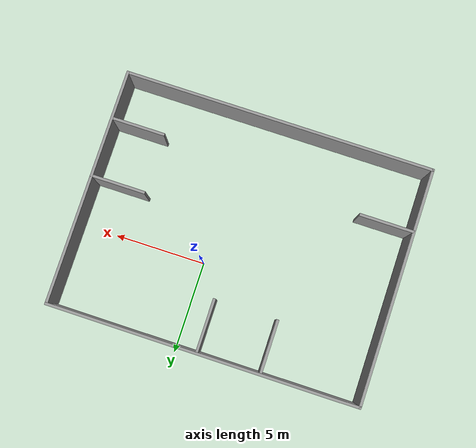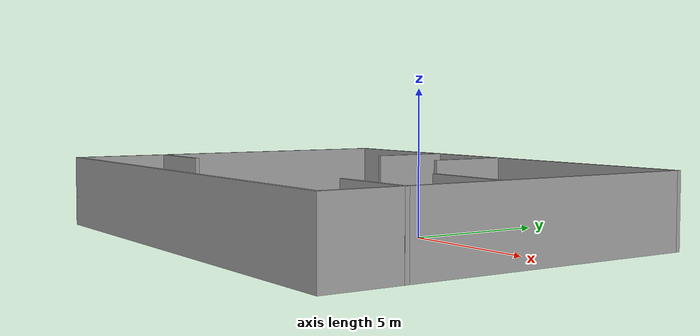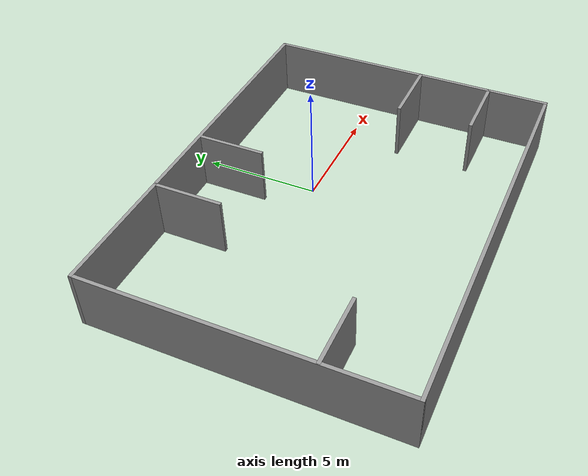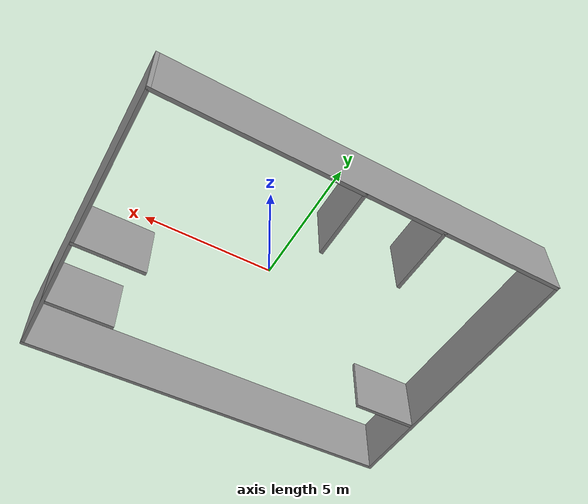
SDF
<?xml version='1.0'?>
<sdf version='1.7'>
  <model name='walls3'>
    <pose>-1.54468 -1.80828 0 0 -0 0</pose>
    <link name='Wall_11'>
      <collision name='Wall_11_Collision'>
        <geometry>
          <box>
            <size>3 0.15 2.5</size>
          </box>
        </geometry>
        <pose>0 0 1.25 0 -0 0</pose>
      </collision>
      <visual name='Wall_11_Visual'>
        <pose>0 0 1.25 0 -0 0</pose>
        <geometry>
          <box>
            <size>3 0.15 2.5</size>
          </box>
        </geometry>
        <material>
          <script>
            <uri>file://media/materials/scripts/gazebo.material</uri>
            <name>Gazebo/Grey</name>
          </script>
          <ambient>1 1 1 1</ambient>
        </material>
        <meta>
          <layer>0</layer>
        </meta>
      </visual>
      <pose>6.97614 -0.6 0 0 -0 3.14159</pose>
    </link>
    <link name='Wall_13'>
      <collision name='Wall_13_Collision'>
        <geometry>
          <box>
            <size>3 0.15 2.5</size>
          </box>
        </geometry>
        <pose>0 0 1.25 0 -0 0</pose>
      </collision>
      <visual name='Wall_13_Visual'>
        <pose>0 0 1.25 0 -0 0</pose>
        <geometry>
          <box>
            <size>3 0.15 2.5</size>
          </box>
        </geometry>
        <material>
          <script>
            <uri>file://media/materials/scripts/gazebo.material</uri>
            <name>Gazebo/Grey</name>
          </script>
          <ambient>1 1 1 1</ambient>
        </material>
        <meta>
          <layer>0</layer>
        </meta>
      </visual>
      <pose>-3.12111 4.98973 0 0 -0 -1.5708</pose>
    </link>
    <link name='Wall_15'>
      <collision name='Wall_15_Collision'>
        <geometry>
          <box>
            <size>3 0.15 2.5</size>
          </box>
        </geometry>
        <pose>0 0 1.25 0 -0 0</pose>
      </collision>
      <visual name='Wall_15_Visual'>
        <pose>0 0 1.25 0 -0 0</pose>
        <geometry>
          <box>
            <size>3 0.15 2.5</size>
          </box>
        </geometry>
        <material>
          <script>
            <uri>file://media/materials/scripts/gazebo.material</uri>
            <name>Gazebo/Grey</name>
          </script>
          <ambient>1 1 1 1</ambient>
        </material>
        <meta>
          <layer>0</layer>
        </meta>
      </visual>
      <pose>0.3 4.98097 0 0 -0 -1.5708</pose>
    </link>
    <link name='Wall_18'>
      <collision name='Wall_18_Collision'>
        <geometry>
          <box>
            <size>17 0.15 2.5</size>
          </box>
        </geometry>
        <pose>0 0 1.25 0 -0 0</pose>
      </collision>
      <visual name='Wall_18_Visual'>
        <pose>0 0 1.25 0 -0 0</pose>
        <geometry>
          <box>
            <size>17 0.15 2.5</size>
          </box>
        </geometry>
        <material>
          <script>
            <uri>file://media/materials/scripts/gazebo.material</uri>
            <name>Gazebo/Grey</name>
          </script>
          <ambient>1 1 1 1</ambient>
        </material>
        <meta>
          <layer>0</layer>
        </meta>
      </visual>
      <pose>-0.001152 6.425 0 0 -0 3.14159</pose>
    </link>
    <link name='Wall_19'>
      <collision name='Wall_19_Collision'>
        <geometry>
          <box>
            <size>13 0.15 2.5</size>
          </box>
        </geometry>
        <pose>0 0 1.25 0 -0 0</pose>
      </collision>
      <visual name='Wall_19_Visual'>
        <pose>0 0 1.25 0 -0 0</pose>
        <geometry>
          <box>
            <size>13 0.15 2.5</size>
          </box>
        </geometry>
        <material>
          <script>
            <uri>file://media/materials/scripts/gazebo.material</uri>
            <name>Gazebo/Grey</name>
          </script>
          <ambient>1 1 1 1</ambient>
        </material>
        <meta>
          <layer>0</layer>
        </meta>
      </visual>
      <pose>-8.42615 0 0 0 -0 -1.5708</pose>
    </link>
    <link name='Wall_3'>
      <collision name='Wall_3_Collision'>
        <geometry>
          <box>
            <size>17 0.15 2.5</size>
          </box>
        </geometry>
        <pose>0 0 1.25 0 -0 0</pose>
      </collision>
      <visual name='Wall_3_Visual'>
        <pose>0 0 1.25 0 -0 0</pose>
        <geometry>
          <box>
            <size>17 0.15 2.5</size>
          </box>
        </geometry>
        <material>
          <script>
            <uri>file://media/materials/scripts/gazebo.material</uri>
            <name>Gazebo/Grey</name>
          </script>
          <ambient>1 1 1 1</ambient>
        </material>
        <meta>
          <layer>0</layer>
        </meta>
      </visual>
      <pose>-0.001152 -6.425 0 0 -0 0</pose>
    </link>
    <link name='Wall_4'>
      <collision name='Wall_4_Collision'>
        <geometry>
          <box>
            <size>13 0.15 2.5</size>
          </box>
        </geometry>
        <pose>0 0 1.25 0 -0 0</pose>
      </collision>
      <visual name='Wall_4_Visual'>
        <pose>0 0 1.25 0 -0 0</pose>
        <geometry>
          <box>
            <size>13 0.15 2.5</size>
          </box>
        </geometry>
        <material>
          <script>
            <uri>file://media/materials/scripts/gazebo.material</uri>
            <name>Gazebo/Grey</name>
          </script>
          <ambient>1 1 1 1</ambient>
        </material>
        <meta>
          <layer>0</layer>
        </meta>
      </visual>
      <pose>8.42385 0 0 0 -0 1.5708</pose>
    </link>
    <link name='Wall_7'>
      <collision name='Wall_7_Collision'>
        <geometry>
          <box>
            <size>3 0.15 2.5</size>
          </box>
        </geometry>
        <pose>0 0 1.25 0 -0 0</pose>
      </collision>
      <visual name='Wall_7_Visual'>
        <pose>0 0 1.25 0 -0 0</pose>
        <geometry>
          <box>
            <size>3 0.15 2.5</size>
          </box>
        </geometry>
        <material>
          <script>
            <uri>file://media/materials/scripts/gazebo.material</uri>
            <name>Gazebo/Grey</name>
          </script>
          <ambient>1 1 1 1</ambient>
        </material>
        <meta>
          <layer>0</layer>
        </meta>
      </visual>
      <pose>-6.97723 -3 0 0 -0 0</pose>
    </link>
    <link name='Wall_9'>
      <collision name='Wall_9_Collision'>
        <geometry>
          <box>
            <size>3 0.15 2.5</size>
          </box>
        </geometry>
        <pose>0 0 1.25 0 -0 0</pose>
      </collision>
      <visual name='Wall_9_Visual'>
        <pose>0 0 1.25 0 -0 0</pose>
        <geometry>
          <box>
            <size>3 0.15 2.5</size>
          </box>
        </geometry>
        <material>
          <script>
            <uri>file://media/materials/scripts/gazebo.material</uri>
            <name>Gazebo/Grey</name>
          </script>
          <ambient>1 1 1 1</ambient>
        </material>
        <meta>
          <layer>0</layer>
        </meta>
      </visual>
      <pose>7.00115 -3.83547 0 0 -0 3.14159</pose>
    </link>
    <static>1</static>
  </model>
</sdf>
